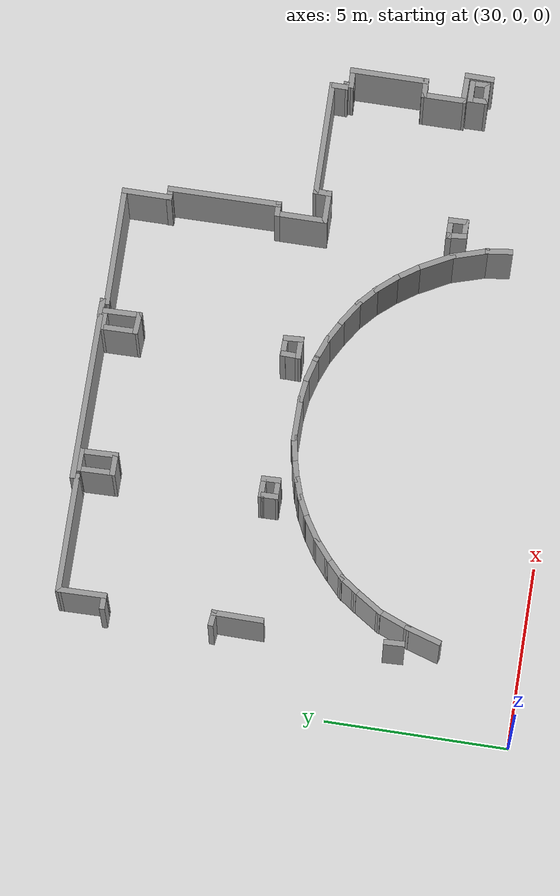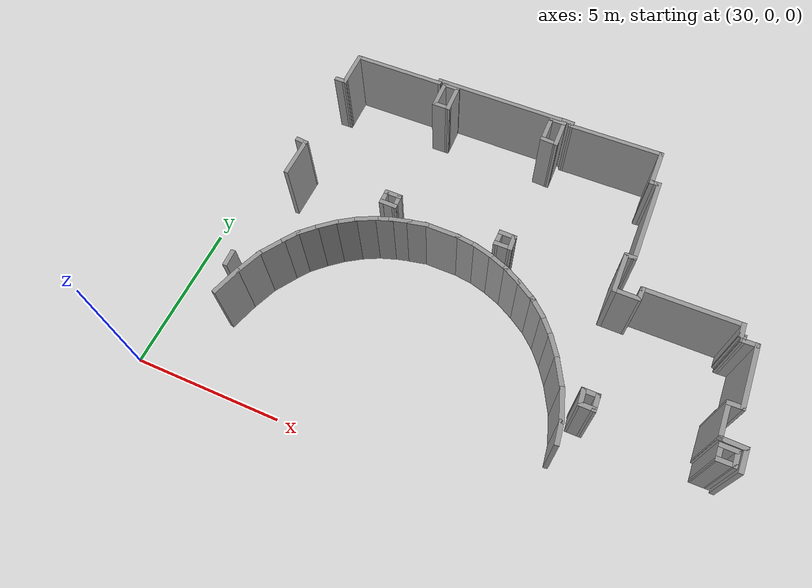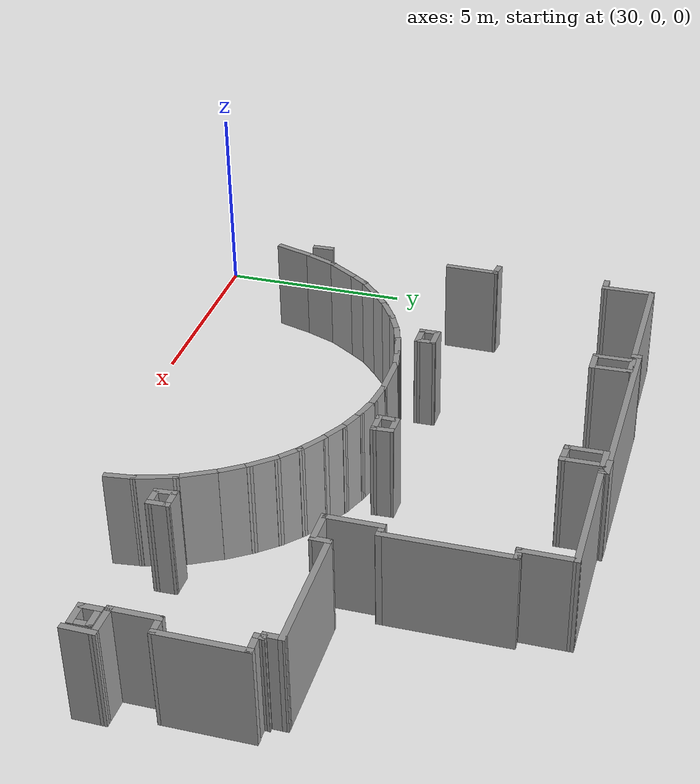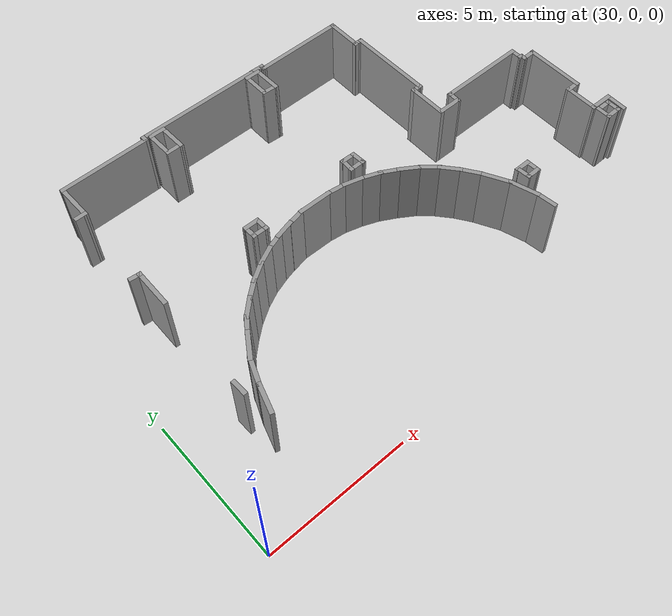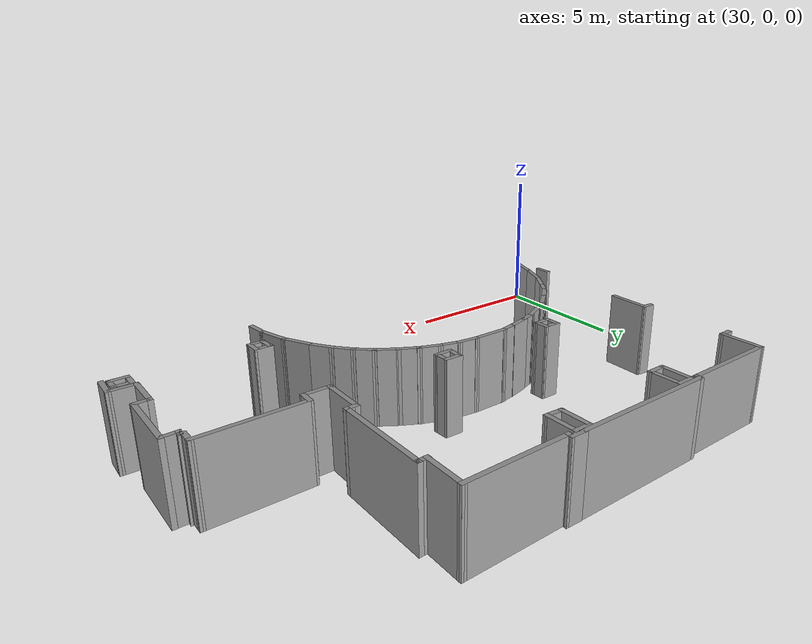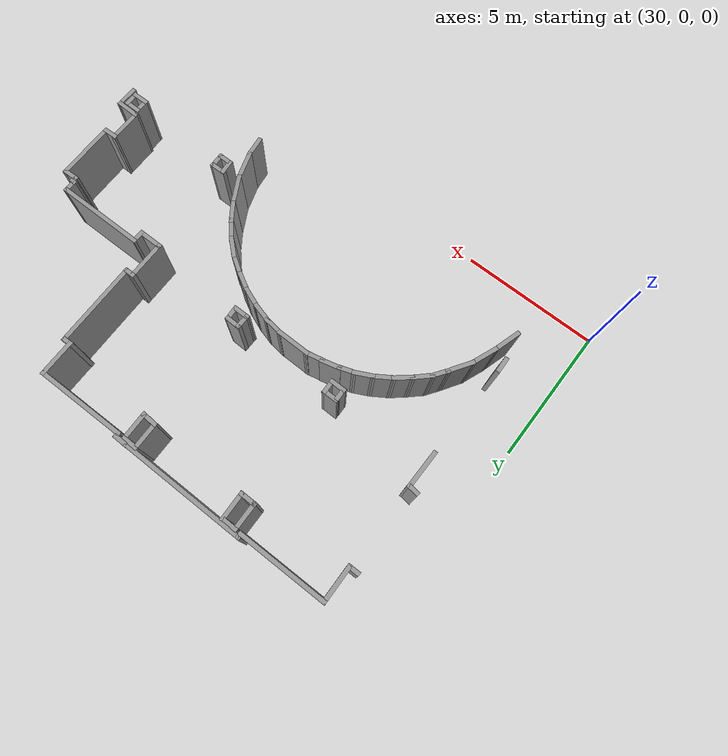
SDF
<sdf version="1.7">
 <model name="TD1-Mapa">
  <pose>-6.249136 -5.50363 0 0 -0 0</pose>
  <link name="Wall_599">
   <collision name="Wall_599_Collision">
    <geometry><box><size>1.424334 0.15 2.5</size></box></geometry>
    <pose>0 0 1.25 0 -0 0</pose>
   </collision>
   <visual name="Wall_599_Visual">
    <pose>0 0 1.25 0 -0 0</pose>
    <geometry><box><size>1.424334 0.15 2.5</size></box></geometry>
    <material>
     <script><uri>file://media/materials/scripts/gazebo.material</uri><name>Gazebo/Grey</name></script>
     <ambient>1 1 1 1</ambient>
    </material>
    <meta><layer>0</layer></meta>
   </visual>
   <pose>38.244 13.16663 0 0 -0 1.55863</pose>
  </link>
  <link name="Wall_600">
   <collision name="Wall_600_Collision">
    <geometry><box><size>0.4468383 0.15 2.5</size></box></geometry>
    <pose>0 0 1.25 0 -0 0</pose>
   </collision>
   <visual name="Wall_600_Visual">
    <pose>0 0 1.25 0 -0 0</pose>
    <geometry><box><size>0.4468383 0.15 2.5</size></box></geometry>
    <material>
     <script><uri>file://media/materials/scripts/gazebo.material</uri><name>Gazebo/Grey</name></script>
     <ambient>1 1 1 1</ambient>
    </material>
    <meta><layer>0</layer></meta>
   </visual>
   <pose>38.10413 13.81923 0 0 -0 3.036732</pose>
  </link>
  <link name="Wall_604">
   <collision name="Wall_604_Collision">
    <geometry><box><size>0.4520383 0.15 2.5</size></box></geometry>
    <pose>0 0 1.25 0 -0 0</pose>
   </collision>
   <visual name="Wall_604_Visual">
    <pose>0 0 1.25 0 -0 0</pose>
    <geometry><box><size>0.4520383 0.15 2.5</size></box></geometry>
    <material>
     <script><uri>file://media/materials/scripts/gazebo.material</uri><name>Gazebo/Grey</name></script>
     <ambient>1 1 1 1</ambient>
    </material>
    <meta><layer>0</layer></meta>
   </visual>
   <pose>38.11563 16.77273 0 0 -0 0</pose>
  </link>
  <link name="Wall_605">
   <collision name="Wall_605_Collision">
    <geometry><box><size>1.385132 0.15 2.5</size></box></geometry>
    <pose>0 0 1.25 0 -0 0</pose>
   </collision>
   <visual name="Wall_605_Visual">
    <pose>0 0 1.25 0 -0 0</pose>
    <geometry><box><size>1.385132 0.15 2.5</size></box></geometry>
    <material>
     <script><uri>file://media/materials/scripts/gazebo.material</uri><name>Gazebo/Grey</name></script>
     <ambient>1 1 1 1</ambient>
    </material>
    <meta><layer>0</layer></meta>
   </visual>
   <pose>38.25773 17.39013 0 0 -0 1.585138</pose>
  </link>
  <link name="Wall_606">
   <collision name="Wall_606_Collision">
    <geometry><box><size>3.286339 0.15 2.5</size></box></geometry>
    <pose>0 0 1.25 0 -0 0</pose>
   </collision>
   <visual name="Wall_606_Visual">
    <pose>0 0 1.25 0 -0 0</pose>
    <geometry><box><size>3.286339 0.15 2.5</size></box></geometry>
    <material>
     <script><uri>file://media/materials/scripts/gazebo.material</uri><name>Gazebo/Grey</name></script>
     <ambient>1 1 1 1</ambient>
    </material>
    <meta><layer>0</layer></meta>
   </visual>
   <pose>39.817 18.01213 0 0 -0 0.0028333</pose>
  </link>
  <link name="Wall_607">
   <collision name="Wall_607_Collision">
    <geometry><box><size>0.2658343 0.15 2.5</size></box></geometry>
    <pose>0 0 1.25 0 -0 0</pose>
   </collision>
   <visual name="Wall_607_Visual">
    <pose>0 0 1.25 0 -0 0</pose>
    <geometry><box><size>0.2658343 0.15 2.5</size></box></geometry>
    <material>
     <script><uri>file://media/materials/scripts/gazebo.material</uri><name>Gazebo/Grey</name></script>
     <ambient>1 1 1 1</ambient>
    </material>
    <meta><layer>0</layer></meta>
   </visual>
   <pose>41.38523 18.074433 0 0 -0 1.57083</pose>
  </link>
  <link name="Wall_608">
   <collision name="Wall_608_Collision">
    <geometry><box><size>4.610138 0.15 2.5</size></box></geometry>
    <pose>0 0 1.25 0 -0 0</pose>
   </collision>
   <visual name="Wall_608_Visual">
    <pose>0 0 1.25 0 -0 0</pose>
    <geometry><box><size>4.610138 0.15 2.5</size></box></geometry>
    <material>
     <script><uri>file://media/materials/scripts/gazebo.material</uri><name>Gazebo/Grey</name></script>
     <ambient>1 1 1 1</ambient>
    </material>
    <meta><layer>0</layer></meta>
   </visual>
   <pose>43.61533 18.12763 0 0 -0 -0.0019393</pose>
  </link>
  <link name="Wall_610">
   <collision name="Wall_610_Collision">
    <geometry><box><size>0.532436 0.15 2.5</size></box></geometry>
    <pose>0 0 1.25 0 -0 0</pose>
   </collision>
   <visual name="Wall_610_Visual">
    <pose>0 0 1.25 0 -0 0</pose>
    <geometry><box><size>0.532436 0.15 2.5</size></box></geometry>
    <material>
     <script><uri>file://media/materials/scripts/gazebo.material</uri><name>Gazebo/Grey</name></script>
     <ambient>1 1 1 1</ambient>
    </material>
    <meta><layer>0</layer></meta>
   </visual>
   <pose>46.09863 18.12763 0 0 -0 -0.0232353</pose>
  </link>
  <link name="Wall_611">
   <collision name="Wall_611_Collision">
    <geometry><box><size>0.2655303 0.15 2.5</size></box></geometry>
    <pose>0 0 1.25 0 -0 0</pose>
   </collision>
   <visual name="Wall_611_Visual">
    <pose>0 0 1.25 0 -0 0</pose>
    <geometry><box><size>0.2655303 0.15 2.5</size></box></geometry>
    <material>
     <script><uri>file://media/materials/scripts/gazebo.material</uri><name>Gazebo/Grey</name></script>
     <ambient>1 1 1 1</ambient>
    </material>
    <meta><layer>0</layer></meta>
   </visual>
   <pose>46.28963 18.06543 0 0 -0 -1.57083</pose>
  </link>
  <link name="Wall_612">
   <collision name="Wall_612_Collision">
    <geometry><box><size>3.313034 0.15 2.5</size></box></geometry>
    <pose>0 0 1.25 0 -0 0</pose>
   </collision>
   <visual name="Wall_612_Visual">
    <pose>0 0 1.25 0 -0 0</pose>
    <geometry><box><size>3.313034 0.15 2.5</size></box></geometry>
    <material>
     <script><uri>file://media/materials/scripts/gazebo.material</uri><name>Gazebo/Grey</name></script>
     <ambient>1 1 1 1</ambient>
    </material>
    <meta><layer>0</layer></meta>
   </visual>
   <pose>47.87113 18.021 0 0 -0 0.0084323</pose>
  </link>
  <link name="Wall_613">
   <collision name="Wall_613_Collision">
    <geometry><box><size>1.384939 0.15 2.5</size></box></geometry>
    <pose>0 0 1.25 0 -0 0</pose>
   </collision>
   <visual name="Wall_613_Visual">
    <pose>0 0 1.25 0 -0 0</pose>
    <geometry><box><size>1.384939 0.15 2.5</size></box></geometry>
    <material>
     <script><uri>file://media/materials/scripts/gazebo.material</uri><name>Gazebo/Grey</name></script>
     <ambient>1 1 1 1</ambient>
    </material>
    <meta><layer>0</layer></meta>
   </visual>
   <pose>49.45263 17.41683 0 0 -0 -1.57083</pose>
  </link>
  <link name="Wall_615">
   <collision name="Wall_615_Collision">
    <geometry><box><size>0.372132 0.15 2.5</size></box></geometry>
    <pose>0 0 1.25 0 -0 0</pose>
   </collision>
   <visual name="Wall_615_Visual">
    <pose>0 0 1.25 0 -0 0</pose>
    <geometry><box><size>0.372132 0.15 2.5</size></box></geometry>
    <material>
     <script><uri>file://media/materials/scripts/gazebo.material</uri><name>Gazebo/Grey</name></script>
     <ambient>1 1 1 1</ambient>
    </material>
    <meta><layer>0</layer></meta>
   </visual>
   <pose>49.55483 16.80823 0 0 -0 0</pose>
  </link>
  <link name="Wall_617">
   <collision name="Wall_617_Collision">
    <geometry><box><size>3.126437 0.15 2.5</size></box></geometry>
    <pose>0 0 1.25 0 -0 0</pose>
   </collision>
   <visual name="Wall_617_Visual">
    <pose>0 0 1.25 0 -0 0</pose>
    <geometry><box><size>3.126437 0.15 2.5</size></box></geometry>
    <material>
     <script><uri>file://media/materials/scripts/gazebo.material</uri><name>Gazebo/Grey</name></script>
     <ambient>1 1 1 1</ambient>
    </material>
    <meta><layer>0</layer></meta>
   </visual>
   <pose>49.701 15.32363 0 0 -0 -1.564833</pose>
  </link>
  <link name="Wall_618">
   <collision name="Wall_618_Collision">
    <geometry><box><size>0.4171333 0.15 2.5</size></box></geometry>
    <pose>0 0 1.25 0 -0 0</pose>
   </collision>
   <visual name="Wall_618_Visual">
    <pose>0 0 1.25 0 -0 0</pose>
    <geometry><box><size>0.4171333 0.15 2.5</size></box></geometry>
    <material>
     <script><uri>file://media/materials/scripts/gazebo.material</uri><name>Gazebo/Grey</name></script>
     <ambient>1 1 1 1</ambient>
    </material>
    <meta><layer>0</layer></meta>
   </visual>
   <pose>49.57673 13.83533 0 0 -0 3.141539</pose>
  </link>
  <link name="Wall_619">
   <collision name="Wall_619_Collision">
    <geometry><box><size>1.456037 0.15 2.5</size></box></geometry>
    <pose>0 0 1.25 0 -0 0</pose>
   </collision>
   <visual name="Wall_619_Visual">
    <pose>0 0 1.25 0 -0 0</pose>
    <geometry><box><size>1.456037 0.15 2.5</size></box></geometry>
    <material>
     <script><uri>file://media/materials/scripts/gazebo.material</uri><name>Gazebo/Grey</name></script>
     <ambient>1 1 1 1</ambient>
    </material>
    <meta><layer>0</layer></meta>
   </visual>
   <pose>49.44343 13.18233 0 0 -0 -1.57083</pose>
  </link>
  <link name="Wall_620">
   <collision name="Wall_620_Collision">
    <geometry><box><size>0.923033 0.15 2.5</size></box></geometry>
    <pose>0 0 1.25 0 -0 0</pose>
   </collision>
   <visual name="Wall_620_Visual">
    <pose>0 0 1.25 0 -0 0</pose>
    <geometry><box><size>0.923033 0.15 2.5</size></box></geometry>
    <material>
     <script><uri>file://media/materials/scripts/gazebo.material</uri><name>Gazebo/Grey</name></script>
     <ambient>1 1 1 1</ambient>
    </material>
    <meta><layer>0</layer></meta>
   </visual>
   <pose>49.82993 12.52933 0 0 -0 0</pose>
  </link>
  <link name="Wall_621">
   <collision name="Wall_621_Collision">
    <geometry><box><size>0.5055303 0.15 2.5</size></box></geometry>
    <pose>0 0 1.25 0 -0 0</pose>
   </collision>
   <visual name="Wall_621_Visual">
    <pose>0 0 1.25 0 -0 0</pose>
    <geometry><box><size>0.5055303 0.15 2.5</size></box></geometry>
    <material>
     <script><uri>file://media/materials/scripts/gazebo.material</uri><name>Gazebo/Grey</name></script>
     <ambient>1 1 1 1</ambient>
    </material>
    <meta><layer>0</layer></meta>
   </visual>
   <pose>50.22083 12.707 0 0 -0 1.54583</pose>
  </link>
  <link name="Wall_622">
   <collision name="Wall_622_Collision">
    <geometry><box><size>3.20673 0.15 2.5</size></box></geometry>
    <pose>0 0 1.25 0 -0 0</pose>
   </collision>
   <visual name="Wall_622_Visual">
    <pose>0 0 1.25 0 -0 0</pose>
    <geometry><box><size>3.20673 0.15 2.5</size></box></geometry>
    <material>
     <script><uri>file://media/materials/scripts/gazebo.material</uri><name>Gazebo/Grey</name></script>
     <ambient>1 1 1 1</ambient>
    </material>
    <meta><layer>0</layer></meta>
   </visual>
   <pose>51.75343 12.89363 0 0 -0 0.0058313</pose>
  </link>
  <link name="Wall_623">
   <collision name="Wall_623_Collision">
    <geometry><box><size>0.5143383 0.15 2.5</size></box></geometry>
    <pose>0 0 1.25 0 -0 0</pose>
   </collision>
   <visual name="Wall_623_Visual">
    <pose>0 0 1.25 0 -0 0</pose>
    <geometry><box><size>0.5143383 0.15 2.5</size></box></geometry>
    <material>
     <script><uri>file://media/materials/scripts/gazebo.material</uri><name>Gazebo/Grey</name></script>
     <ambient>1 1 1 1</ambient>
    </material>
    <meta><layer>0</layer></meta>
   </visual>
   <pose>53.28163 12.72033 0 0 -0 -1.57083</pose>
  </link>
  <link name="Wall_624">
   <collision name="Wall_624_Collision">
    <geometry><box><size>0.2299363 0.15 2.5</size></box></geometry>
    <pose>0 0 1.25 0 -0 0</pose>
   </collision>
   <visual name="Wall_624_Visual">
    <pose>0 0 1.25 0 -0 0</pose>
    <geometry><box><size>0.2299363 0.15 2.5</size></box></geometry>
    <material>
     <script><uri>file://media/materials/scripts/gazebo.material</uri><name>Gazebo/Grey</name></script>
     <ambient>1 1 1 1</ambient>
    </material>
    <meta><layer>0</layer></meta>
   </visual>
   <pose>53.32163 12.53373 0 0 -0 -0.1106353</pose>
  </link>
  <link name="Wall_625">
   <collision name="Wall_625_Collision">
    <geometry><box><size>0.2832373 0.15 2.5</size></box></geometry>
    <pose>0 0 1.25 0 -0 0</pose>
   </collision>
   <visual name="Wall_625_Visual">
    <pose>0 0 1.25 0 -0 0</pose>
    <geometry><box><size>0.2832373 0.15 2.5</size></box></geometry>
    <material>
     <script><uri>file://media/materials/scripts/gazebo.material</uri><name>Gazebo/Grey</name></script>
     <ambient>1 1 1 1</ambient>
    </material>
    <meta><layer>0</layer></meta>
   </visual>
   <pose>53.35713 12.46263 0 0 -0 -1.637336</pose>
  </link>
  <link name="Wall_626">
   <collision name="Wall_626_Collision">
    <geometry><box><size>0.5587393 0.15 2.5</size></box></geometry>
    <pose>0 0 1.25 0 -0 0</pose>
   </collision>
   <visual name="Wall_626_Visual">
    <pose>0 0 1.25 0 -0 0</pose>
    <geometry><box><size>0.5587393 0.15 2.5</size></box></geometry>
    <material>
     <script><uri>file://media/materials/scripts/gazebo.material</uri><name>Gazebo/Grey</name></script>
     <ambient>1 1 1 1</ambient>
    </material>
    <meta><layer>0</layer></meta>
   </visual>
   <pose>53.55713 12.40043 0 0 -0 0.0217333</pose>
  </link>
  <link name="Wall_628">
   <collision name="Wall_628_Collision">
    <geometry><box><size>2.171334 0.15 2.5</size></box></geometry>
    <pose>0 0 1.25 0 -0 0</pose>
   </collision>
   <visual name="Wall_628_Visual">
    <pose>0 0 1.25 0 -0 0</pose>
    <geometry><box><size>2.171334 0.15 2.5</size></box></geometry>
    <material>
     <script><uri>file://media/materials/scripts/gazebo.material</uri><name>Gazebo/Grey</name></script>
     <ambient>1 1 1 1</ambient>
    </material>
    <meta><layer>0</layer></meta>
   </visual>
   <pose>53.78373 11.40113 0 0 -0 -1.57083</pose>
  </link>
  <link name="Wall_629">
   <collision name="Wall_629_Collision">
    <geometry><box><size>0.5496373 0.15 2.5</size></box></geometry>
    <pose>0 0 1.25 0 -0 0</pose>
   </collision>
   <visual name="Wall_629_Visual">
    <pose>0 0 1.25 0 -0 0</pose>
    <geometry><box><size>0.5496373 0.15 2.5</size></box></geometry>
    <material>
     <script><uri>file://media/materials/scripts/gazebo.material</uri><name>Gazebo/Grey</name></script>
     <ambient>1 1 1 1</ambient>
    </material>
    <meta><layer>0</layer></meta>
   </visual>
   <pose>53.58393 10.38473 0 0 -0 -3.112139</pose>
  </link>
  <link name="Wall_630">
   <collision name="Wall_630_Collision">
    <geometry><box><size>1.241038 0.15 2.5</size></box></geometry>
    <pose>0 0 1.25 0 -0 0</pose>
   </collision>
   <visual name="Wall_630_Visual">
    <pose>0 0 1.25 0 -0 0</pose>
    <geometry><box><size>1.241038 0.15 2.5</size></box></geometry>
    <material>
     <script><uri>file://media/materials/scripts/gazebo.material</uri><name>Gazebo/Grey</name></script>
     <ambient>1 1 1 1</ambient>
    </material>
    <meta><layer>0</layer></meta>
   </visual>
   <pose>53.38413 9.838331 0 0 -0 -1.57083</pose>
  </link>
  <link name="Wall_631">
   <collision name="Wall_631_Collision">
    <geometry><box><size>0.8786303 0.15 2.5</size></box></geometry>
    <pose>0 0 1.25 0 -0 0</pose>
   </collision>
   <visual name="Wall_631_Visual">
    <pose>0 0 1.25 0 -0 0</pose>
    <geometry><box><size>0.8786303 0.15 2.5</size></box></geometry>
    <material>
     <script><uri>file://media/materials/scripts/gazebo.material</uri><name>Gazebo/Grey</name></script>
     <ambient>1 1 1 1</ambient>
    </material>
    <meta><layer>0</layer></meta>
   </visual>
   <pose>53.74843 9.291933 0 0 -0 -0.0161323</pose>
  </link>
  <link name="Wall_632">
   <collision name="Wall_632_Collision">
    <geometry><box><size>0.8081313 0.15 2.5</size></box></geometry>
    <pose>0 0 1.25 0 -0 0</pose>
   </collision>
   <visual name="Wall_632_Visual">
    <pose>0 0 1.25 0 -0 0</pose>
    <geometry><box><size>0.8081313 0.15 2.5</size></box></geometry>
    <material>
     <script><uri>file://media/materials/scripts/gazebo.material</uri><name>Gazebo/Grey</name></script>
     <ambient>1 1 1 1</ambient>
    </material>
    <meta><layer>0</layer></meta>
   </visual>
   <pose>54.10683 8.957035 0 0 -0 -1.588635</pose>
  </link>
  <link name="Wall_679">
   <collision name="Wall_679_Collision">
    <geometry><box><size>0.6352373 0.15 2.5</size></box></geometry>
    <pose>0 0 1.25 0 -0 0</pose>
   </collision>
   <visual name="Wall_679_Visual">
    <pose>0 0 1.25 0 -0 0</pose>
    <geometry><box><size>0.6352373 0.15 2.5</size></box></geometry>
    <material>
     <script><uri>file://media/materials/scripts/gazebo.material</uri><name>Gazebo/Grey</name></script>
     <ambient>1 1 1 1</ambient>
    </material>
    <meta><layer>0</layer></meta>
   </visual>
   <pose>41.84543 18.01273 0 0 -0 -0.0178353</pose>
  </link>
  <link name="Wall_680">
   <collision name="Wall_680_Collision">
    <geometry><box><size>1.068737 0.15 2.5</size></box></geometry>
    <pose>0 0 1.25 0 -0 0</pose>
   </collision>
   <visual name="Wall_680_Visual">
    <pose>0 0 1.25 0 -0 0</pose>
    <geometry><box><size>1.068737 0.15 2.5</size></box></geometry>
    <material>
     <script><uri>file://media/materials/scripts/gazebo.material</uri><name>Gazebo/Grey</name></script>
     <ambient>1 1 1 1</ambient>
    </material>
    <meta><layer>0</layer></meta>
   </visual>
   <pose>42.101 17.54913 0 0 -0 -1.54253</pose>
  </link>
  <link name="Wall_681">
   <collision name="Wall_681_Collision">
    <geometry><box><size>0.6439333 0.15 2.5</size></box></geometry>
    <pose>0 0 1.25 0 -0 0</pose>
   </collision>
   <visual name="Wall_681_Visual">
    <pose>0 0 1.25 0 -0 0</pose>
    <geometry><box><size>0.6439333 0.15 2.5</size></box></geometry>
    <material>
     <script><uri>file://media/materials/scripts/gazebo.material</uri><name>Gazebo/Grey</name></script>
     <ambient>1 1 1 1</ambient>
    </material>
    <meta><layer>0</layer></meta>
   </visual>
   <pose>41.86713 17.08993 0 0 -0 3.141539</pose>
  </link>
  <link name="Wall_682">
   <collision name="Wall_682_Collision">
    <geometry><box><size>0.973238 0.15 2.5</size></box></geometry>
    <pose>0 0 1.25 0 -0 0</pose>
   </collision>
   <visual name="Wall_682_Visual">
    <pose>0 0 1.25 0 -0 0</pose>
    <geometry><box><size>0.973238 0.15 2.5</size></box></geometry>
    <material>
     <script><uri>file://media/materials/scripts/gazebo.material</uri><name>Gazebo/Grey</name></script>
     <ambient>1 1 1 1</ambient>
    </material>
    <meta><layer>0</layer></meta>
   </visual>
   <pose>41.61153 17.51023 0 0 -0 1.591835</pose>
  </link>
  <link name="Wall_684">
   <collision name="Wall_684_Collision">
    <geometry><box><size>0.6092303 0.15 2.5</size></box></geometry>
    <pose>0 0 1.25 0 -0 0</pose>
   </collision>
   <visual name="Wall_684_Visual">
    <pose>0 0 1.25 0 -0 0</pose>
    <geometry><box><size>0.6092303 0.15 2.5</size></box></geometry>
    <material>
     <script><uri>file://media/materials/scripts/gazebo.material</uri><name>Gazebo/Grey</name></script>
     <ambient>1 1 1 1</ambient>
    </material>
    <meta><layer>0</layer></meta>
   </visual>
   <pose>45.80933 18.00833 0 0 -0 0</pose>
  </link>
  <link name="Wall_685">
   <collision name="Wall_685_Collision">
    <geometry><box><size>1.0747323 0.15 2.5</size></box></geometry>
    <pose>0 0 1.25 0 -0 0</pose>
   </collision>
   <visual name="Wall_685_Visual">
    <pose>0 0 1.25 0 -0 0</pose>
    <geometry><box><size>1.0747323 0.15 2.5</size></box></geometry>
    <material>
     <script><uri>file://media/materials/scripts/gazebo.material</uri><name>Gazebo/Grey</name></script>
     <ambient>1 1 1 1</ambient>
    </material>
    <meta><layer>0</layer></meta>
   </visual>
   <pose>46.04753 17.54483 0 0 -0 -1.552131</pose>
  </link>
  <link name="Wall_686">
   <collision name="Wall_686_Collision">
    <geometry><box><size>0.6185383 0.15 2.5</size></box></geometry>
    <pose>0 0 1.25 0 -0 0</pose>
   </collision>
   <visual name="Wall_686_Visual">
    <pose>0 0 1.25 0 -0 0</pose>
    <geometry><box><size>0.6185383 0.15 2.5</size></box></geometry>
    <material>
     <script><uri>file://media/materials/scripts/gazebo.material</uri><name>Gazebo/Grey</name></script>
     <ambient>1 1 1 1</ambient>
    </material>
    <meta><layer>0</layer></meta>
   </visual>
   <pose>45.82233 17.09433 0 0 -0 3.086039</pose>
  </link>
  <link name="Wall_687">
   <collision name="Wall_687_Collision">
    <geometry><box><size>0.9384383 0.15 2.5</size></box></geometry>
    <pose>0 0 1.25 0 -0 0</pose>
   </collision>
   <visual name="Wall_687_Visual">
    <pose>0 0 1.25 0 -0 0</pose>
    <geometry><box><size>0.9384383 0.15 2.5</size></box></geometry>
    <material>
     <script><uri>file://media/materials/scripts/gazebo.material</uri><name>Gazebo/Grey</name></script>
     <ambient>1 1 1 1</ambient>
    </material>
    <meta><layer>0</layer></meta>
   </visual>
   <pose>45.584 17.51023 0 0 -0 1.581738</pose>
  </link>
  <link name="Wall_718">
   <collision name="Wall_718_Collision">
    <geometry><box><size>0.7549353 0.15 2.5</size></box></geometry>
    <pose>0 0 1.25 0 -0 0</pose>
   </collision>
   <visual name="Wall_718_Visual">
    <pose>0 0 1.25 0 -0 0</pose>
    <geometry><box><size>0.7549353 0.15 2.5</size></box></geometry>
    <material>
     <script><uri>file://media/materials/scripts/gazebo.material</uri><name>Gazebo/Grey</name></script>
     <ambient>1 1 1 1</ambient>
    </material>
    <meta><layer>0</layer></meta>
   </visual>
   <pose>49.299 7.725133 0 0 -0 1.692833</pose>
  </link>
  <link name="Wall_720">
   <collision name="Wall_720_Collision">
    <geometry><box><size>1.036337 0.15 2.5</size></box></geometry>
    <pose>0 0 1.25 0 -0 0</pose>
   </collision>
   <visual name="Wall_720_Visual">
    <pose>0 0 1.25 0 -0 0</pose>
    <geometry><box><size>1.036337 0.15 2.5</size></box></geometry>
    <material>
     <script><uri>file://media/materials/scripts/gazebo.material</uri><name>Gazebo/Grey</name></script>
     <ambient>1 1 1 1</ambient>
    </material>
    <meta><layer>0</layer></meta>
   </visual>
   <pose>48.77483 9.332834 0 0 -0 -1.085431</pose>
  </link>
  <link name="Wall_721">
   <collision name="Wall_721_Collision">
    <geometry><box><size>1.087434 0.15 2.5</size></box></geometry>
    <pose>0 0 1.25 0 -0 0</pose>
   </collision>
   <visual name="Wall_721_Visual">
    <pose>0 0 1.25 0 -0 0</pose>
    <geometry><box><size>1.087434 0.15 2.5</size></box></geometry>
    <material>
     <script><uri>file://media/materials/scripts/gazebo.material</uri><name>Gazebo/Grey</name></script>
     <ambient>1 1 1 1</ambient>
    </material>
    <meta><layer>0</layer></meta>
   </visual>
   <pose>49.11943 8.492835 0 0 -0 -1.27233</pose>
  </link>
  <link name="Wall_723">
   <collision name="Wall_723_Collision">
    <geometry><box><size>1.051937 0.15 2.5</size></box></geometry>
    <pose>0 0 1.25 0 -0 0</pose>
   </collision>
   <visual name="Wall_723_Visual">
    <pose>0 0 1.25 0 -0 0</pose>
    <geometry><box><size>1.051937 0.15 2.5</size></box></geometry>
    <material>
     <script><uri>file://media/materials/scripts/gazebo.material</uri><name>Gazebo/Grey</name></script>
     <ambient>1 1 1 1</ambient>
    </material>
    <meta><layer>0</layer></meta>
   </visual>
   <pose>38.50113 8.208535 0 0 -0 1.270139</pose>
  </link>
  <link name="Wall_724">
   <collision name="Wall_724_Collision">
    <geometry><box><size>1.01233 0.15 2.5</size></box></geometry>
    <pose>0 0 1.25 0 -0 0</pose>
   </collision>
   <visual name="Wall_724_Visual">
    <pose>0 0 1.25 0 -0 0</pose>
    <geometry><box><size>1.01233 0.15 2.5</size></box></geometry>
    <material>
     <script><uri>file://media/materials/scripts/gazebo.material</uri><name>Gazebo/Grey</name></script>
     <ambient>1 1 1 1</ambient>
    </material>
    <meta><layer>0</layer></meta>
   </visual>
   <pose>38.794 9.039932 0 0 -0 1.192135</pose>
  </link>
  <link name="Wall_725">
   <collision name="Wall_725_Collision">
    <geometry><box><size>1.003039 0.15 2.5</size></box></geometry>
    <pose>0 0 1.25 0 -0 0</pose>
   </collision>
   <visual name="Wall_725_Visual">
    <pose>0 0 1.25 0 -0 0</pose>
    <geometry><box><size>1.003039 0.15 2.5</size></box></geometry>
    <material>
     <script><uri>file://media/materials/scripts/gazebo.material</uri><name>Gazebo/Grey</name></script>
     <ambient>1 1 1 1</ambient>
    </material>
    <meta><layer>0</layer></meta>
   </visual>
   <pose>39.186 9.798036 0 0 -0 0.9939393</pose>
  </link>
  <link name="Wall_726">
   <collision name="Wall_726_Collision">
    <geometry><box><size>0.6567363 0.15 2.5</size></box></geometry>
    <pose>0 0 1.25 0 -0 0</pose>
   </collision>
   <visual name="Wall_726_Visual">
    <pose>0 0 1.25 0 -0 0</pose>
    <geometry><box><size>0.6567363 0.15 2.5</size></box></geometry>
    <material>
     <script><uri>file://media/materials/scripts/gazebo.material</uri><name>Gazebo/Grey</name></script>
     <ambient>1 1 1 1</ambient>
    </material>
    <meta><layer>0</layer></meta>
   </visual>
   <pose>39.56513 10.36243 0 0 -0 0.9544393</pose>
  </link>
  <link name="Wall_729">
   <collision name="Wall_729_Collision">
    <geometry><box><size>0.7899313 0.15 2.5</size></box></geometry>
    <pose>0 0 1.25 0 -0 0</pose>
   </collision>
   <visual name="Wall_729_Visual">
    <pose>0 0 1.25 0 -0 0</pose>
    <geometry><box><size>0.7899313 0.15 2.5</size></box></geometry>
    <material>
     <script><uri>file://media/materials/scripts/gazebo.material</uri><name>Gazebo/Grey</name></script>
     <ambient>1 1 1 1</ambient>
    </material>
    <meta><layer>0</layer></meta>
   </visual>
   <pose>39.94413 10.78883 0 0 -0 0.7568333</pose>
  </link>
  <link name="Wall_730">
   <collision name="Wall_730_Collision">
    <geometry><box><size>0.7434353 0.15 2.5</size></box></geometry>
    <pose>0 0 1.25 0 -0 0</pose>
   </collision>
   <visual name="Wall_730_Visual">
    <pose>0 0 1.25 0 -0 0</pose>
    <geometry><box><size>0.7434353 0.15 2.5</size></box></geometry>
    <material>
     <script><uri>file://media/materials/scripts/gazebo.material</uri><name>Gazebo/Grey</name></script>
     <ambient>1 1 1 1</ambient>
    </material>
    <meta><layer>0</layer></meta>
   </visual>
   <pose>40.40513 11.198 0 0 -0 0.692838</pose>
  </link>
  <link name="Wall_731">
   <collision name="Wall_731_Collision">
    <geometry><box><size>0.8048313 0.15 2.5</size></box></geometry>
    <pose>0 0 1.25 0 -0 0</pose>
   </collision>
   <visual name="Wall_731_Visual">
    <pose>0 0 1.25 0 -0 0</pose>
    <geometry><box><size>0.8048313 0.15 2.5</size></box></geometry>
    <material>
     <script><uri>file://media/materials/scripts/gazebo.material</uri><name>Gazebo/Grey</name></script>
     <ambient>1 1 1 1</ambient>
    </material>
    <meta><layer>0</layer></meta>
   </visual>
   <pose>40.909 11.56423 0 0 -0 0.5697353</pose>
  </link>
  <link name="Wall_732">
   <collision name="Wall_732_Collision">
    <geometry><box><size>0.7549313 0.15 2.5</size></box></geometry>
    <pose>0 0 1.25 0 -0 0</pose>
   </collision>
   <visual name="Wall_732_Visual">
    <pose>0 0 1.25 0 -0 0</pose>
    <geometry><box><size>0.7549313 0.15 2.5</size></box></geometry>
    <material>
     <script><uri>file://media/materials/scripts/gazebo.material</uri><name>Gazebo/Grey</name></script>
     <ambient>1 1 1 1</ambient>
    </material>
    <meta><layer>0</layer></meta>
   </visual>
   <pose>41.45613 11.87433 0 0 -0 0.4572373</pose>
  </link>
  <link name="Wall_733">
   <collision name="Wall_733_Collision">
    <geometry><box><size>0.6403383 0.15 2.5</size></box></geometry>
    <pose>0 0 1.25 0 -0 0</pose>
   </collision>
   <visual name="Wall_733_Visual">
    <pose>0 0 1.25 0 -0 0</pose>
    <geometry><box><size>0.6403383 0.15 2.5</size></box></geometry>
    <material>
     <script><uri>file://media/materials/scripts/gazebo.material</uri><name>Gazebo/Grey</name></script>
     <ambient>1 1 1 1</ambient>
    </material>
    <meta><layer>0</layer></meta>
   </visual>
   <pose>41.96013 12.08543 0 0 -0 0.3217353</pose>
  </link>
  <link name="Wall_734">
   <collision name="Wall_734_Collision">
    <geometry><box><size>0.7455313 0.15 2.5</size></box></geometry>
    <pose>0 0 1.25 0 -0 0</pose>
   </collision>
   <visual name="Wall_734_Visual">
    <pose>0 0 1.25 0 -0 0</pose>
    <geometry><box><size>0.7455313 0.15 2.5</size></box></geometry>
    <material>
     <script><uri>file://media/materials/scripts/gazebo.material</uri><name>Gazebo/Grey</name></script>
     <ambient>1 1 1 1</ambient>
    </material>
    <meta><layer>0</layer></meta>
   </visual>
   <pose>42.48133 12.24623 0 0 -0 0.2484383</pose>
  </link>
  <link name="Wall_735">
   <collision name="Wall_735_Collision">
    <geometry><box><size>0.7041393 0.15 2.5</size></box></geometry>
    <pose>0 0 1.25 0 -0 0</pose>
   </collision>
   <visual name="Wall_735_Visual">
    <pose>0 0 1.25 0 -0 0</pose>
    <geometry><box><size>0.7041393 0.15 2.5</size></box></geometry>
    <material>
     <script><uri>file://media/materials/scripts/gazebo.material</uri><name>Gazebo/Grey</name></script>
     <ambient>1 1 1 1</ambient>
    </material>
    <meta><layer>0</layer></meta>
   </visual>
   <pose>43.04133 12.36543 0 0 -0 0.2034393</pose>
  </link>
  <link name="Wall_736">
   <collision name="Wall_736_Collision">
    <geometry><box><size>1.245536 0.15 2.5</size></box></geometry>
    <pose>0 0 1.25 0 -0 0</pose>
   </collision>
   <visual name="Wall_736_Visual">
    <pose>0 0 1.25 0 -0 0</pose>
    <geometry><box><size>1.245536 0.15 2.5</size></box></geometry>
    <material>
     <script><uri>file://media/materials/scripts/gazebo.material</uri><name>Gazebo/Grey</name></script>
     <ambient>1 1 1 1</ambient>
    </material>
    <meta><layer>0</layer></meta>
   </visual>
   <pose>43.85553 12.41713 0 0 -0 -0.0079333</pose>
  </link>
  <link name="Wall_737">
   <collision name="Wall_737_Collision">
    <geometry><box><size>0.7494383 0.15 2.5</size></box></geometry>
    <pose>0 0 1.25 0 -0 0</pose>
   </collision>
   <visual name="Wall_737_Visual">
    <pose>0 0 1.25 0 -0 0</pose>
    <geometry><box><size>0.7494383 0.15 2.5</size></box></geometry>
    <material>
     <script><uri>file://media/materials/scripts/gazebo.material</uri><name>Gazebo/Grey</name></script>
     <ambient>1 1 1 1</ambient>
    </material>
    <meta><layer>0</layer></meta>
   </visual>
   <pose>44.69543 12.374 0 0 -0 -0.1297303</pose>
  </link>
  <link name="Wall_738">
   <collision name="Wall_738_Collision">
    <geometry><box><size>0.7582373 0.15 2.5</size></box></geometry>
    <pose>0 0 1.25 0 -0 0</pose>
   </collision>
   <visual name="Wall_738_Visual">
    <pose>0 0 1.25 0 -0 0</pose>
    <geometry><box><size>0.7582373 0.15 2.5</size></box></geometry>
    <material>
     <script><uri>file://media/materials/scripts/gazebo.material</uri><name>Gazebo/Grey</name></script>
     <ambient>1 1 1 1</ambient>
    </material>
    <meta><layer>0</layer></meta>
   </visual>
   <pose>45.28563 12.25343 0 0 -0 -0.2724363</pose>
  </link>
  <link name="Wall_739">
   <collision name="Wall_739_Collision">
    <geometry><box><size>0.7883343 0.15 2.5</size></box></geometry>
    <pose>0 0 1.25 0 -0 0</pose>
   </collision>
   <visual name="Wall_739_Visual">
    <pose>0 0 1.25 0 -0 0</pose>
    <geometry><box><size>0.7883343 0.15 2.5</size></box></geometry>
    <material>
     <script><uri>file://media/materials/scripts/gazebo.material</uri><name>Gazebo/Grey</name></script>
     <ambient>1 1 1 1</ambient>
    </material>
    <meta><layer>0</layer></meta>
   </visual>
   <pose>45.87573 12.05533 0 0 -0 -0.3729383</pose>
  </link>
  <link name="Wall_740">
   <collision name="Wall_740_Collision">
    <geometry><box><size>0.7516353 0.15 2.5</size></box></geometry>
    <pose>0 0 1.25 0 -0 0</pose>
   </collision>
   <visual name="Wall_740_Visual">
    <pose>0 0 1.25 0 -0 0</pose>
    <geometry><box><size>0.7516353 0.15 2.5</size></box></geometry>
    <material>
     <script><uri>file://media/materials/scripts/gazebo.material</uri><name>Gazebo/Grey</name></script>
     <ambient>1 1 1 1</ambient>
    </material>
    <meta><layer>0</layer></meta>
   </visual>
   <pose>46.431537 11.79253 0 0 -0 -0.5084383</pose>
  </link>
  <link name="Wall_741">
   <collision name="Wall_741_Collision">
    <geometry><box><size>0.8405363 0.15 2.5</size></box></geometry>
    <pose>0 0 1.25 0 -0 0</pose>
   </collision>
   <visual name="Wall_741_Visual">
    <pose>0 0 1.25 0 -0 0</pose>
    <geometry><box><size>0.8405363 0.15 2.5</size></box></geometry>
    <material>
     <script><uri>file://media/materials/scripts/gazebo.material</uri><name>Gazebo/Grey</name></script>
     <ambient>1 1 1 1</ambient>
    </material>
    <meta><layer>0</layer></meta>
   </visual>
   <pose>46.98713 11.45653 0 0 -0 -0.5810383</pose>
  </link>
  <link name="Wall_742">
   <collision name="Wall_742_Collision">
    <geometry><box><size>0.7660333 0.15 2.5</size></box></geometry>
    <pose>0 0 1.25 0 -0 0</pose>
   </collision>
   <visual name="Wall_742_Visual">
    <pose>0 0 1.25 0 -0 0</pose>
    <geometry><box><size>0.7660333 0.15 2.5</size></box></geometry>
    <material>
     <script><uri>file://media/materials/scripts/gazebo.material</uri><name>Gazebo/Grey</name></script>
     <ambient>1 1 1 1</ambient>
    </material>
    <meta><layer>0</layer></meta>
   </visual>
   <pose>47.503 11.06023 0 0 -0 -0.7359333</pose>
  </link>
  <link name="Wall_743">
   <collision name="Wall_743_Collision">
    <geometry><box><size>0.8041333 0.15 2.5</size></box></geometry>
    <pose>0 0 1.25 0 -0 0</pose>
   </collision>
   <visual name="Wall_743_Visual">
    <pose>0 0 1.25 0 -0 0</pose>
    <geometry><box><size>0.8041333 0.15 2.5</size></box></geometry>
    <material>
     <script><uri>file://media/materials/scripts/gazebo.material</uri><name>Gazebo/Grey</name></script>
     <ambient>1 1 1 1</ambient>
    </material>
    <meta><layer>0</layer></meta>
   </visual>
   <pose>47.94343 10.60363 0 0 -0 -0.8693313</pose>
  </link>
  <link name="Wall_744">
   <collision name="Wall_744_Collision">
    <geometry><box><size>0.7951363 0.15 2.5</size></box></geometry>
    <pose>0 0 1.25 0 -0 0</pose>
   </collision>
   <visual name="Wall_744_Visual">
    <pose>0 0 1.25 0 -0 0</pose>
    <geometry><box><size>0.7951363 0.15 2.5</size></box></geometry>
    <material>
     <script><uri>file://media/materials/scripts/gazebo.material</uri><name>Gazebo/Grey</name></script>
     <ambient>1 1 1 1</ambient>
    </material>
    <meta><layer>0</layer></meta>
   </visual>
   <pose>48.33543 10.08673 0 0 -0 -0.9753383</pose>
  </link>
  <link name="Wall_746">
   <collision name="Wall_746_Collision">
    <geometry><box><size>0.5975303 0.15 2.5</size></box></geometry>
    <pose>0 0 1.25 0 -0 0</pose>
   </collision>
   <visual name="Wall_746_Visual">
    <pose>0 0 1.25 0 -0 0</pose>
    <geometry><box><size>0.5975303 0.15 2.5</size></box></geometry>
    <material>
     <script><uri>file://media/materials/scripts/gazebo.material</uri><name>Gazebo/Grey</name></script>
     <ambient>1 1 1 1</ambient>
    </material>
    <meta><layer>0</layer></meta>
   </visual>
   <pose>41.85733 13.05633 0 0 -0 -0.0126353</pose>
  </link>
  <link name="Wall_747">
   <collision name="Wall_747_Collision">
    <geometry><box><size>0.5410323 0.15 2.5</size></box></geometry>
    <pose>0 0 1.25 0 -0 0</pose>
   </collision>
   <visual name="Wall_747_Visual">
    <pose>0 0 1.25 0 -0 0</pose>
    <geometry><box><size>0.5410323 0.15 2.5</size></box></geometry>
    <material>
     <script><uri>file://media/materials/scripts/gazebo.material</uri><name>Gazebo/Grey</name></script>
     <ambient>1 1 1 1</ambient>
    </material>
    <meta><layer>0</layer></meta>
   </visual>
   <pose>42.08683 12.85813 0 0 -0 -1.541832</pose>
  </link>
  <link name="Wall_748">
   <collision name="Wall_748_Collision">
    <geometry><box><size>0.6032303 0.15 2.5</size></box></geometry>
    <pose>0 0 1.25 0 -0 0</pose>
   </collision>
   <visual name="Wall_748_Visual">
    <pose>0 0 1.25 0 -0 0</pose>
    <geometry><box><size>0.6032303 0.15 2.5</size></box></geometry>
    <material>
     <script><uri>file://media/materials/scripts/gazebo.material</uri><name>Gazebo/Grey</name></script>
     <ambient>1 1 1 1</ambient>
    </material>
    <meta><layer>0</layer></meta>
   </visual>
   <pose>41.86583 12.66553 0 0 -0 3.129039</pose>
  </link>
  <link name="Wall_749">
   <collision name="Wall_749_Collision">
    <geometry><box><size>0.47863 0.15 2.5</size></box></geometry>
    <pose>0 0 1.25 0 -0 0</pose>
   </collision>
   <visual name="Wall_749_Visual">
    <pose>0 0 1.25 0 -0 0</pose>
    <geometry><box><size>0.47863 0.15 2.5</size></box></geometry>
    <material>
     <script><uri>file://media/materials/scripts/gazebo.material</uri><name>Gazebo/Grey</name></script>
     <ambient>1 1 1 1</ambient>
    </material>
    <meta><layer>0</layer></meta>
   </visual>
   <pose>41.63643 12.82693 0 0 -0 1.588034</pose>
  </link>
  <link name="Wall_751">
   <collision name="Wall_751_Collision">
    <geometry><box><size>0.591939 0.15 2.5</size></box></geometry>
    <pose>0 0 1.25 0 -0 0</pose>
   </collision>
   <visual name="Wall_751_Visual">
    <pose>0 0 1.25 0 -0 0</pose>
    <geometry><box><size>0.591939 0.15 2.5</size></box></geometry>
    <material>
     <script><uri>file://media/materials/scripts/gazebo.material</uri><name>Gazebo/Grey</name></script>
     <ambient>1 1 1 1</ambient>
    </material>
    <meta><layer>0</layer></meta>
   </visual>
   <pose>45.80283 13.074035 0 0 -0 -0.0256333</pose>
  </link>
  <link name="Wall_752">
   <collision name="Wall_752_Collision">
    <geometry><box><size>0.5584383 0.15 2.5</size></box></geometry>
    <pose>0 0 1.25 0 -0 0</pose>
   </collision>
   <visual name="Wall_752_Visual">
    <pose>0 0 1.25 0 -0 0</pose>
    <geometry><box><size>0.5584383 0.15 2.5</size></box></geometry>
    <material>
     <script><uri>file://media/materials/scripts/gazebo.material</uri><name>Gazebo/Grey</name></script>
     <ambient>1 1 1 1</ambient>
    </material>
    <meta><layer>0</layer></meta>
   </visual>
   <pose>46.035 12.86093 0 0 -0 -1.51533</pose>
  </link>
  <link name="Wall_753">
   <collision name="Wall_753_Collision">
    <geometry><box><size>0.6201363 0.15 2.5</size></box></geometry>
    <pose>0 0 1.25 0 -0 0</pose>
   </collision>
   <visual name="Wall_753_Visual">
    <pose>0 0 1.25 0 -0 0</pose>
    <geometry><box><size>0.6201363 0.15 2.5</size></box></geometry>
    <material>
     <script><uri>file://media/materials/scripts/gazebo.material</uri><name>Gazebo/Grey</name></script>
     <ambient>1 1 1 1</ambient>
    </material>
    <meta><layer>0</layer></meta>
   </visual>
   <pose>45.81133 12.657 0 0 -0 3.141539</pose>
  </link>
  <link name="Wall_754">
   <collision name="Wall_754_Collision">
    <geometry><box><size>0.5522333 0.15 2.5</size></box></geometry>
    <pose>0 0 1.25 0 -0 0</pose>
   </collision>
   <visual name="Wall_754_Visual">
    <pose>0 0 1.25 0 -0 0</pose>
    <geometry><box><size>0.5522333 0.15 2.5</size></box></geometry>
    <material>
     <script><uri>file://media/materials/scripts/gazebo.material</uri><name>Gazebo/Grey</name></script>
     <ambient>1 1 1 1</ambient>
    </material>
    <meta><layer>0</layer></meta>
   </visual>
   <pose>45.58193 12.85813 0 0 -0 1.542633</pose>
  </link>
  <link name="Wall_757">
   <collision name="Wall_757_Collision">
    <geometry><box><size>0.5750303 0.15 2.5</size></box></geometry>
    <pose>0 0 1.25 0 -0 0</pose>
   </collision>
   <visual name="Wall_757_Visual">
    <pose>0 0 1.25 0 -0 0</pose>
    <geometry><box><size>0.5750303 0.15 2.5</size></box></geometry>
    <material>
     <script><uri>file://media/materials/scripts/gazebo.material</uri><name>Gazebo/Grey</name></script>
     <ambient>1 1 1 1</ambient>
    </material>
    <meta><layer>0</layer></meta>
   </visual>
   <pose>38.16963 8.932435 0 0 -0 -1.530832</pose>
  </link>
  <link name="Wall_791">
   <collision name="Wall_791_Collision">
    <geometry><box><size>0.5921393 0.15 2.5</size></box></geometry>
    <pose>0 0 1.25 0 -0 0</pose>
   </collision>
   <visual name="Wall_791_Visual">
    <pose>0 0 1.25 0 -0 0</pose>
    <geometry><box><size>0.5921393 0.15 2.5</size></box></geometry>
    <material>
     <script><uri>file://media/materials/scripts/gazebo.material</uri><name>Gazebo/Grey</name></script>
     <ambient>1 1 1 1</ambient>
    </material>
    <meta><layer>0</layer></meta>
   </visual>
   <pose>49.75153 9.139333 0 0 -0 -0.0042363</pose>
  </link>
  <link name="Wall_792">
   <collision name="Wall_792_Collision">
    <geometry><box><size>0.5664343 0.15 2.5</size></box></geometry>
    <pose>0 0 1.25 0 -0 0</pose>
   </collision>
   <visual name="Wall_792_Visual">
    <pose>0 0 1.25 0 -0 0</pose>
    <geometry><box><size>0.5664343 0.15 2.5</size></box></geometry>
    <material>
     <script><uri>file://media/materials/scripts/gazebo.material</uri><name>Gazebo/Grey</name></script>
     <ambient>1 1 1 1</ambient>
    </material>
    <meta><layer>0</layer></meta>
   </visual>
   <pose>49.97853 8.930138 0 0 -0 -1.542138</pose>
  </link>
  <link name="Wall_793">
   <collision name="Wall_793_Collision">
    <geometry><box><size>0.5471343 0.15 2.5</size></box></geometry>
    <pose>0 0 1.25 0 -0 0</pose>
   </collision>
   <visual name="Wall_793_Visual">
    <pose>0 0 1.25 0 -0 0</pose>
    <geometry><box><size>0.5471343 0.15 2.5</size></box></geometry>
    <material>
     <script><uri>file://media/materials/scripts/gazebo.material</uri><name>Gazebo/Grey</name></script>
     <ambient>1 1 1 1</ambient>
    </material>
    <meta><layer>0</layer></meta>
   </visual>
   <pose>49.78593 8.721937 0 0 -0 3.141539</pose>
  </link>
  <link name="Wall_794">
   <collision name="Wall_794_Collision">
    <geometry><box><size>0.5502343 0.15 2.5</size></box></geometry>
    <pose>0 0 1.25 0 -0 0</pose>
   </collision>
   <visual name="Wall_794_Visual">
    <pose>0 0 1.25 0 -0 0</pose>
    <geometry><box><size>0.5502343 0.15 2.5</size></box></geometry>
    <material>
     <script><uri>file://media/materials/scripts/gazebo.material</uri><name>Gazebo/Grey</name></script>
     <ambient>1 1 1 1</ambient>
    </material>
    <meta><layer>0</layer></meta>
   </visual>
   <pose>49.56373 8.921336 0 0 -0 1.65633</pose>
  </link>
  <link name="Wall_798">
   <collision name="Wall_798_Collision">
    <geometry><box><size>0.6125393 0.15 2.5</size></box></geometry>
    <pose>0 0 1.25 0 -0 0</pose>
   </collision>
   <visual name="Wall_798_Visual">
    <pose>0 0 1.25 0 -0 0</pose>
    <geometry><box><size>0.6125393 0.15 2.5</size></box></geometry>
    <material>
     <script><uri>file://media/materials/scripts/gazebo.material</uri><name>Gazebo/Grey</name></script>
     <ambient>1 1 1 1</ambient>
    </material>
    <meta><layer>0</layer></meta>
   </visual>
   <pose>53.684 9.119633 0 0 -0 0</pose>
  </link>
  <link name="Wall_799">
   <collision name="Wall_799_Collision">
    <geometry><box><size>0.5612383 0.15 2.5</size></box></geometry>
    <pose>0 0 1.25 0 -0 0</pose>
   </collision>
   <visual name="Wall_799_Visual">
    <pose>0 0 1.25 0 -0 0</pose>
    <geometry><box><size>0.5612383 0.15 2.5</size></box></geometry>
    <material>
     <script><uri>file://media/materials/scripts/gazebo.material</uri><name>Gazebo/Grey</name></script>
     <ambient>1 1 1 1</ambient>
    </material>
    <meta><layer>0</layer></meta>
   </visual>
   <pose>53.91753 8.914033 0 0 -0 -1.560338</pose>
  </link>
  <link name="Wall_800">
   <collision name="Wall_800_Collision">
    <geometry><box><size>0.6169353 0.15 2.5</size></box></geometry>
    <pose>0 0 1.25 0 -0 0</pose>
   </collision>
   <visual name="Wall_800_Visual">
    <pose>0 0 1.25 0 -0 0</pose>
    <geometry><box><size>0.6169353 0.15 2.5</size></box></geometry>
    <material>
     <script><uri>file://media/materials/scripts/gazebo.material</uri><name>Gazebo/Grey</name></script>
     <ambient>1 1 1 1</ambient>
    </material>
    <meta><layer>0</layer></meta>
   </visual>
   <pose>53.68623 8.706239 0 0 -0 -3.132432</pose>
  </link>
  <link name="Wall_801">
   <collision name="Wall_801_Collision">
    <geometry><box><size>0.5740363 0.15 2.5</size></box></geometry>
    <pose>0 0 1.25 0 -0 0</pose>
   </collision>
   <visual name="Wall_801_Visual">
    <pose>0 0 1.25 0 -0 0</pose>
    <geometry><box><size>0.5740363 0.15 2.5</size></box></geometry>
    <material>
     <script><uri>file://media/materials/scripts/gazebo.material</uri><name>Gazebo/Grey</name></script>
     <ambient>1 1 1 1</ambient>
    </material>
    <meta><layer>0</layer></meta>
   </visual>
   <pose>53.45063 8.916137 0 0 -0 1.58093</pose>
  </link>
  <static>1</static>
 </model>
</sdf>
